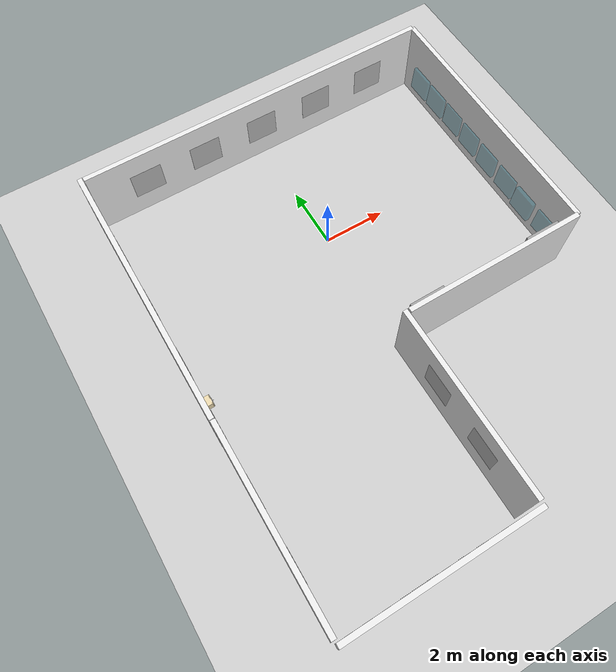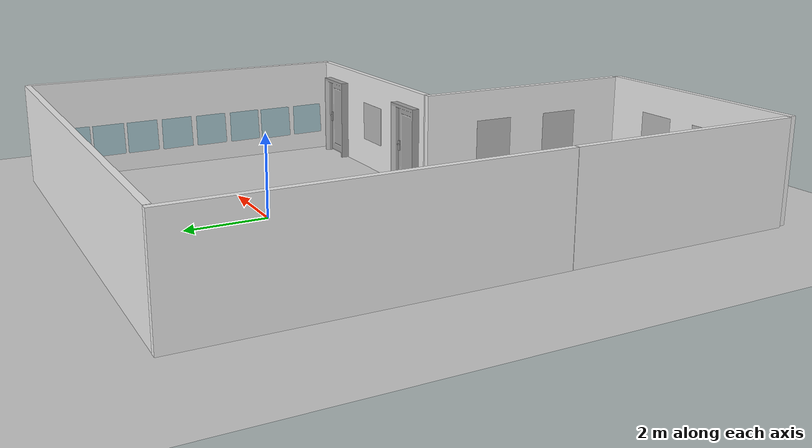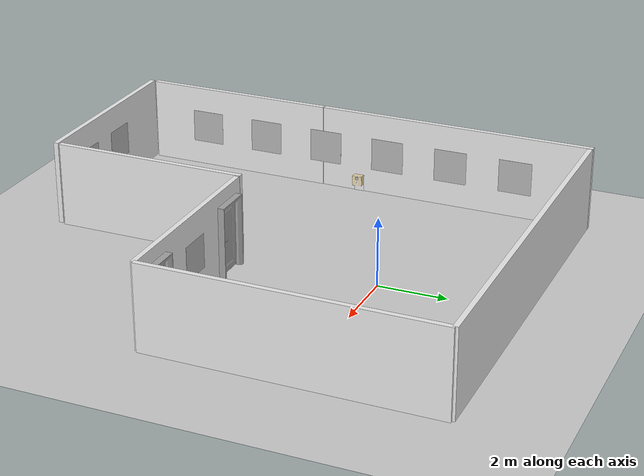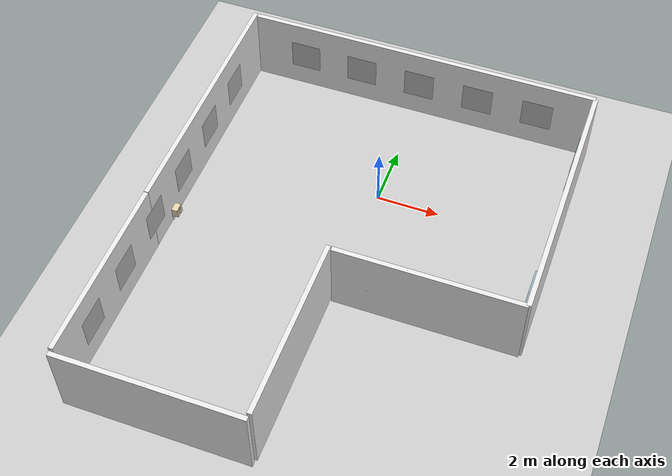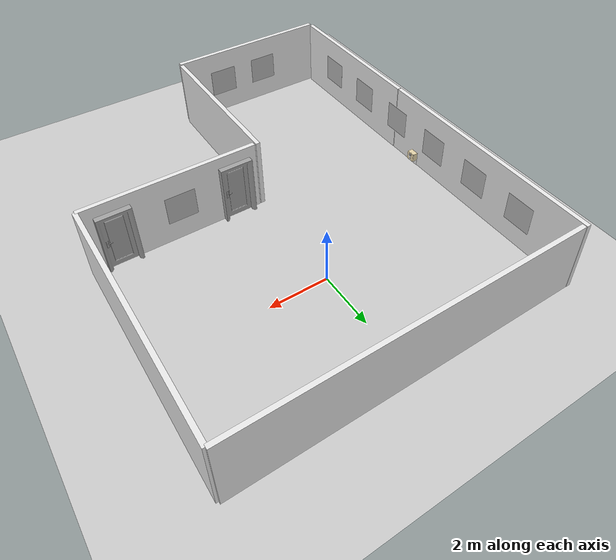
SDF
<sdf version="1.6">
 <world name="default">
  <light name="sun" type="directional">
   <pose>0 0 10 0 -0 0</pose>
   <diffuse>0.8 0.8 0.8 1</diffuse>
   <specular>0.2 0.2 0.2 1</specular>
   <attenuation>
    <range>1000</range>
    <constant>0.9</constant>
    <linear>0.01</linear>
    <quadratic>0.001</quadratic>
   </attenuation>
   <direction>-0.5 0.5 -1</direction>
  </light>
  <gravity>0 0 -9.8</gravity>
  <magnetic_field>6e-06 2.3e-05 -4.2e-05</magnetic_field>
  <atmosphere type="adiabatic"/>
  <physics name="default_physics" default="0" type="ode">
   <max_step_size>0.01</max_step_size>
   <real_time_factor>1</real_time_factor>
   <real_time_update_rate>100</real_time_update_rate>
   <ode>
    <solver>
     <type>quick</type>
     <iters>100</iters>
     <precon_iters>0</precon_iters>
     <sor>1</sor>
     <use_dynamic_moi_rescaling>0</use_dynamic_moi_rescaling>
    </solver>
    <constraints>
     <cfm>0</cfm>
     <erp>0.5</erp>
     <contact_max_correcting_vel>1000</contact_max_correcting_vel>
     <contact_surface_layer>0</contact_surface_layer>
    </constraints>
   </ode>
  </physics>
  <scene><ambient>0.4 0.4 0.4 1</ambient><background>0.7 0.7 0.7 1</background><shadows>0</shadows></scene>
  <spherical_coordinates>
   <surface_model>EARTH_WGS84</surface_model>
   <latitude_deg>0</latitude_deg>
   <longitude_deg>0</longitude_deg>
   <elevation>0</elevation>
   <heading_deg>0</heading_deg>
  </spherical_coordinates>
  <model name="office_env_w2">
   <pose>0 4.162 1.25 0 -0 0</pose>
   <link name="Wall_10">
    <visual name="Wall_10_Visual_0">
     <geometry><box><size>11.466 0.15 2.5</size></box></geometry>
     <material>
      <script>
       <uri>model://office_env_w/materials/scripts</uri>
       <uri>model://office_env_w/materials/textures</uri>
       <name>wall_white</name>
      </script>
     </material>
     <meta><layer>0</layer></meta>
    </visual>
    <collision name="Wall_10_Collision_0"><geometry><box><size>11.466 0.15 2.5</size></box></geometry></collision>
   </link>
   <static>1</static>
  </model>
  <model name="office_env_w">
   <pose>5.733 0 1.25 0 -0 1.57</pose>
   <link name="Wall_10">
    <visual name="Wall_10_Visual_0">
     <geometry><box><size>8.324 0.15 2.5</size></box></geometry>
     <material>
      <script>
       <uri>model://office_env_w/materials/scripts</uri>
       <uri>model://office_env_w/materials/textures</uri>
       <name>wall_white</name>
      </script>
     </material>
     <meta><layer>0</layer></meta>
    </visual>
    <collision name="Wall_10_Collision_0"><geometry><box><size>8.324 0.15 2.5</size></box></geometry></collision>
   </link>
   <static>1</static>
  </model>
  <model name="office_env_w3">
   <pose>2.8655 -4.162 1.25 0 -0 0</pose>
   <link name="Wall_10">
    <visual name="Wall_10_Visual_0">
     <geometry><box><size>5.733 0.15 2.5</size></box></geometry>
     <material>
      <script>
       <uri>model://office_env_w/materials/scripts</uri>
       <uri>model://office_env_w/materials/textures</uri>
       <name>wall_white</name>
      </script>
     </material>
     <meta><layer>0</layer></meta>
    </visual>
    <collision name="Wall_10_Collision_0"><geometry><box><size>5.733 0.15 2.5</size></box></geometry></collision>
   </link>
   <static>1</static>
  </model>
  <model name="office_env_w3_clone">
   <pose>-0.116895 -6.96099 1.25 0 -0 1.57</pose>
   <link name="Wall_10">
    <visual name="Wall_10_Visual_0">
     <geometry><box><size>5.733 0.15 2.5</size></box></geometry>
     <material>
      <script>
       <uri>model://office_env_w/materials/scripts</uri>
       <uri>model://office_env_w/materials/textures</uri>
       <name>wall_white</name>
      </script>
     </material>
     <meta><layer>0</layer></meta>
    </visual>
    <collision name="Wall_10_Collision_0"><geometry><box><size>5.733 0.15 2.5</size></box></geometry></collision>
   </link>
   <static>1</static>
  </model>
  <model name="office_env_w_clone">
   <pose>-5.82948 0.079903 1.25 0 -0 1.57</pose>
   <link name="Wall_10">
    <visual name="Wall_10_Visual_0">
     <geometry><box><size>8.324 0.15 2.5</size></box></geometry>
     <material>
      <script>
       <uri>model://office_env_w/materials/scripts</uri>
       <uri>model://office_env_w/materials/textures</uri>
       <name>wall_white</name>
      </script>
     </material>
     <meta><layer>0</layer></meta>
    </visual>
    <collision name="Wall_10_Collision_0"><geometry><box><size>8.324 0.15 2.5</size></box></geometry></collision>
   </link>
   <static>1</static>
  </model>
  <model name="office_env_w3_clone_clone">
   <pose>-5.82704 -6.96526 1.25 0 -0 1.57</pose>
   <link name="Wall_10">
    <visual name="Wall_10_Visual_0">
     <geometry><box><size>5.733 0.15 2.5</size></box></geometry>
     <material>
      <script>
       <uri>model://office_env_w/materials/scripts</uri>
       <uri>model://office_env_w/materials/textures</uri>
       <name>wall_white</name>
      </script>
     </material>
     <meta><layer>0</layer></meta>
    </visual>
    <collision name="Wall_10_Collision_0"><geometry><box><size>5.733 0.15 2.5</size></box></geometry></collision>
   </link>
   <static>1</static>
  </model>
  <model name="office_env_w3_clone_0">
   <pose>-2.96341 -9.9742 1.25 0 -0 0</pose>
   <link name="Wall_10">
    <visual name="Wall_10_Visual_0">
     <geometry><box><size>5.733 0.15 2.5</size></box></geometry>
     <material>
      <script>
       <uri>model://office_env_w/materials/scripts</uri>
       <uri>model://office_env_w/materials/textures</uri>
       <name>wall_white</name>
      </script>
     </material>
     <meta><layer>0</layer></meta>
    </visual>
    <collision name="Wall_10_Collision_0"><geometry><box><size>5.733 0.15 2.5</size></box></geometry></collision>
   </link>
   <static>1</static>
  </model>
  <model name="door_3d">
   <link name="link_1">
    <visual name="visual">
     <geometry><mesh><uri>model://door_3d/meshes/door_v2_door.dae</uri><scale>1 1 1</scale></mesh></geometry>
     <material>
      <script>
       <uri>model://door_3d/materials/scripts</uri>
       <uri>model://door_3d/materials/textures</uri>
       <name>door_3d</name>
      </script>
     </material>
    </visual>
    <collision name="collision">
     <geometry><mesh><uri>model://door_3d/meshes/door_v2_door.dae</uri><scale>1 1 1</scale></mesh></geometry>
    </collision>
   </link>
   <link name="link_2">
    <visual name="visual">
     <geometry><mesh><uri>model://door_3d/meshes/door_v2_handle.dae</uri><scale>1 1 1</scale></mesh></geometry>
     <material>
      <script>
       <uri>model://door_3d/materials/scripts</uri>
       <uri>model://door_3d/materials/textures</uri>
       <name>door_handle</name>
      </script>
     </material>
    </visual>
    <collision name="collision">
     <geometry><mesh><uri>model://door_3d/meshes/door_v2_handle.dae</uri><scale>1 1 1</scale></mesh></geometry>
    </collision>
   </link>
   <static>1</static>
   <pose>4.76404 -4.01537 0 0 -0 0</pose>
  </model>
  <model name="door_3d_0">
   <link name="link_1">
    <visual name="visual">
     <geometry><mesh><uri>model://door_3d/meshes/door_v2_door.dae</uri><scale>1 1 1</scale></mesh></geometry>
     <material>
      <script>
       <uri>model://door_3d/materials/scripts</uri>
       <uri>model://door_3d/materials/textures</uri>
       <name>door_3d</name>
      </script>
     </material>
    </visual>
    <collision name="collision">
     <geometry><mesh><uri>model://door_3d/meshes/door_v2_door.dae</uri><scale>1 1 1</scale></mesh></geometry>
    </collision>
   </link>
   <link name="link_2">
    <visual name="visual">
     <geometry><mesh><uri>model://door_3d/meshes/door_v2_handle.dae</uri><scale>1 1 1</scale></mesh></geometry>
     <material>
      <script>
       <uri>model://door_3d/materials/scripts</uri>
       <uri>model://door_3d/materials/textures</uri>
       <name>door_handle</name>
      </script>
     </material>
    </visual>
    <collision name="collision">
     <geometry><mesh><uri>model://door_3d/meshes/door_v2_handle.dae</uri><scale>1 1 1</scale></mesh></geometry>
    </collision>
   </link>
   <static>1</static>
   <pose>0.773011 -4.02457 0 0 -0 0</pose>
  </model>
  <model name="window_3">
   <link name="link_2">
    <visual name="visual">
     <pose>0 0 0.9 0 -0 0</pose>
     <geometry><box><size>0.8 0.15 0.8</size></box></geometry>
     <material>
      <lighting>1</lighting>
      <ambient>0.1 0.5 0.6 1</ambient>
      <diffuse>0.1 0.5 0.6 1</diffuse>
      <specular>0.01 0.01 0.01 1</specular>
      <emissive>0 0 0 1</emissive>
     </material>
     <transparency>0.7</transparency>
    </visual>
    <collision name="collision">
     <pose>0 0 0.9 0 -0 0</pose>
     <geometry><box><size>0.8 0.15 0.8</size></box></geometry>
    </collision>
   </link>
   <static>1</static>
   <pose>5.55041 3.13004 -0.000428 0.072676 0.011663 1.57159</pose>
  </model>
  <model name="window_3_clone_clone">
   <link name="link_2">
    <visual name="visual">
     <pose>0 0 0.9 0 -0 0</pose>
     <geometry><box><size>0.8 0.15 0.8</size></box></geometry>
     <material>
      <lighting>1</lighting>
      <ambient>0.1 0.5 0.6 1</ambient>
      <diffuse>0.1 0.5 0.6 1</diffuse>
      <specular>0.01 0.01 0.01 1</specular>
      <emissive>0 0 0 1</emissive>
     </material>
     <transparency>0.7</transparency>
    </visual>
    <collision name="collision">
     <pose>0 0 0.9 0 -0 0</pose>
     <geometry><box><size>0.8 0.15 0.8</size></box></geometry>
    </collision>
   </link>
   <static>1</static>
   <pose>5.57835 0.394375 -0.000428 0.072676 0.011663 1.57159</pose>
  </model>
  <model name="window_3_clone_clone_0">
   <link name="link_2">
    <visual name="visual">
     <pose>0 0 0.9 0 -0 0</pose>
     <geometry><box><size>0.8 0.15 0.8</size></box></geometry>
     <material>
      <lighting>1</lighting>
      <ambient>0.1 0.5 0.6 1</ambient>
      <diffuse>0.1 0.5 0.6 1</diffuse>
      <specular>0.01 0.01 0.01 1</specular>
      <emissive>0 0 0 1</emissive>
     </material>
     <transparency>0.7</transparency>
    </visual>
    <collision name="collision">
     <pose>0 0 0.9 0 -0 0</pose>
     <geometry><box><size>0.8 0.15 0.8</size></box></geometry>
    </collision>
   </link>
   <static>1</static>
   <pose>5.57507 -1.53947 -0.000428 0.072676 0.011663 1.57159</pose>
  </model>
  <model name="window_3_clone_clone_1">
   <link name="link_2">
    <visual name="visual">
     <pose>0 0 0.9 0 -0 0</pose>
     <geometry><box><size>0.8 0.15 0.8</size></box></geometry>
     <material>
      <lighting>1</lighting>
      <ambient>0.1 0.5 0.6 1</ambient>
      <diffuse>0.1 0.5 0.6 1</diffuse>
      <specular>0.01 0.01 0.01 1</specular>
      <emissive>0 0 0 1</emissive>
     </material>
     <transparency>0.7</transparency>
    </visual>
    <collision name="collision">
     <pose>0 0 0.9 0 -0 0</pose>
     <geometry><box><size>0.8 0.15 0.8</size></box></geometry>
    </collision>
   </link>
   <static>1</static>
   <pose>5.57316 -3.44378 -0.000428 0.072676 0.011663 1.57159</pose>
  </model>
  <model name="window_3_clone_clone_2">
   <link name="link_2">
    <visual name="visual">
     <pose>0 0 0.9 0 -0 0</pose>
     <geometry><box><size>0.8 0.15 0.8</size></box></geometry>
     <material>
      <lighting>1</lighting>
      <ambient>0.1 0.5 0.6 1</ambient>
      <diffuse>0.1 0.5 0.6 1</diffuse>
      <specular>0.01 0.01 0.01 1</specular>
      <emissive>0 0 0 1</emissive>
     </material>
     <transparency>0.7</transparency>
    </visual>
    <collision name="collision">
     <pose>0 0 0.9 0 -0 0</pose>
     <geometry><box><size>0.8 0.15 0.8</size></box></geometry>
    </collision>
   </link>
   <static>1</static>
   <pose>5.51026 -2.44936 -0.000428 0.072676 0.011663 1.57159</pose>
  </model>
  <model name="window_3_clone_clone_3">
   <link name="link_2">
    <visual name="visual">
     <pose>0 0 0.9 0 -0 0</pose>
     <geometry><box><size>0.8 0.15 0.8</size></box></geometry>
     <material>
      <lighting>1</lighting>
      <ambient>0.1 0.5 0.6 1</ambient>
      <diffuse>0.1 0.5 0.6 1</diffuse>
      <specular>0.01 0.01 0.01 1</specular>
      <emissive>0 0 0 1</emissive>
     </material>
     <transparency>0.7</transparency>
    </visual>
    <collision name="collision">
     <pose>0 0 0.9 0 -0 0</pose>
     <geometry><box><size>0.8 0.15 0.8</size></box></geometry>
    </collision>
   </link>
   <static>1</static>
   <pose>5.56777 -0.565762 -0.000428 0.072676 0.011663 1.57159</pose>
  </model>
  <model name="window_3_clone_clone_4">
   <link name="link_2">
    <visual name="visual">
     <pose>0 0 0.9 0 -0 0</pose>
     <geometry><box><size>0.8 0.15 0.8</size></box></geometry>
     <material>
      <lighting>1</lighting>
      <ambient>0.1 0.5 0.6 1</ambient>
      <diffuse>0.1 0.5 0.6 1</diffuse>
      <specular>0.01 0.01 0.01 1</specular>
      <emissive>0 0 0 1</emissive>
     </material>
     <transparency>0.7</transparency>
    </visual>
    <collision name="collision">
     <pose>0 0 0.9 0 -0 0</pose>
     <geometry><box><size>0.8 0.15 0.8</size></box></geometry>
    </collision>
   </link>
   <static>1</static>
   <pose>5.59135 1.3384 -0.000428 0.072676 0.011663 1.57159</pose>
  </model>
  <model name="window_3_clone_clone_5">
   <link name="link_2">
    <visual name="visual">
     <pose>0 0 0.9 0 -0 0</pose>
     <geometry><box><size>0.8 0.15 0.8</size></box></geometry>
     <material>
      <lighting>1</lighting>
      <ambient>0.1 0.5 0.6 1</ambient>
      <diffuse>0.1 0.5 0.6 1</diffuse>
      <specular>0.01 0.01 0.01 1</specular>
      <emissive>0 0 0 1</emissive>
     </material>
     <transparency>0.7</transparency>
    </visual>
    <collision name="collision">
     <pose>0 0 0.9 0 -0 0</pose>
     <geometry><box><size>0.8 0.15 0.8</size></box></geometry>
    </collision>
   </link>
   <static>1</static>
   <pose>5.56149 2.2418 -0.000428 0.072676 0.011663 1.57159</pose>
  </model>
  <model name="neobotix_wall_stickers">
   <static>1</static>
   <link name="link">
    <collision name="collision">
     <geometry><plane><normal>0 0 1</normal><size>1 1</size></plane></geometry>
     <surface><friction><ode><mu>100</mu><mu2>50</mu2></ode></friction></surface>
    </collision>
    <visual name="visual">
     <cast_shadows>0</cast_shadows>
     <geometry><plane><normal>0 0 1</normal><size>1 1</size></plane></geometry>
     <material>
      <script>
       <uri>model://neobotix_wall_stickers/materials/scripts</uri>
       <uri>model://neobotix_wall_stickers/materials/textures/</uri>
       <name>NeobotixGroundPlane/Image</name>
      </script>
     </material>
    </visual>
   </link>
   <pose>0 4.07 1.25 1.57 -0 0</pose>
  </model>
  <model name="neobotix_wall_stickers_0">
   <static>1</static>
   <link name="link">
    <collision name="collision">
     <geometry><plane><normal>0 0 1</normal><size>1 1</size></plane></geometry>
     <surface><friction><ode><mu>100</mu><mu2>50</mu2></ode></friction></surface>
    </collision>
    <visual name="visual">
     <cast_shadows>0</cast_shadows>
     <geometry><plane><normal>0 0 1</normal><size>1 1</size></plane></geometry>
     <material>
      <script>
       <uri>model://neobotix_wall_stickers/materials/scripts</uri>
       <uri>model://neobotix_wall_stickers/materials/textures/</uri>
       <name>NeobotixGroundPlane/Image</name>
      </script>
     </material>
    </visual>
   </link>
   <pose>-2 4.07 1.25 1.57 -0 0</pose>
  </model>
  <model name="neobotix_wall_stickers_1">
   <static>1</static>
   <link name="link">
    <collision name="collision">
     <geometry><plane><normal>0 0 1</normal><size>1 1</size></plane></geometry>
     <surface><friction><ode><mu>100</mu><mu2>50</mu2></ode></friction></surface>
    </collision>
    <visual name="visual">
     <cast_shadows>0</cast_shadows>
     <geometry><plane><normal>0 0 1</normal><size>1 1</size></plane></geometry>
     <material>
      <script>
       <uri>model://neobotix_wall_stickers/materials/scripts</uri>
       <uri>model://neobotix_wall_stickers/materials/textures/</uri>
       <name>NeobotixGroundPlane/Image</name>
      </script>
     </material>
    </visual>
   </link>
   <pose>-4 4.07 1.25 1.57 -0 0</pose>
  </model>
  <model name="neobotix_wall_stickers_2">
   <static>1</static>
   <link name="link">
    <collision name="collision">
     <geometry><plane><normal>0 0 1</normal><size>1 1</size></plane></geometry>
     <surface><friction><ode><mu>100</mu><mu2>50</mu2></ode></friction></surface>
    </collision>
    <visual name="visual">
     <cast_shadows>0</cast_shadows>
     <geometry><plane><normal>0 0 1</normal><size>1 1</size></plane></geometry>
     <material>
      <script>
       <uri>model://neobotix_wall_stickers/materials/scripts</uri>
       <uri>model://neobotix_wall_stickers/materials/textures/</uri>
       <name>NeobotixGroundPlane/Image</name>
      </script>
     </material>
    </visual>
   </link>
   <pose>2 4.07 1.25 1.57 -0 0</pose>
  </model>
  <model name="neobotix_wall_stickers_3">
   <static>1</static>
   <link name="link">
    <collision name="collision">
     <geometry><plane><normal>0 0 1</normal><size>1 1</size></plane></geometry>
     <surface><friction><ode><mu>100</mu><mu2>50</mu2></ode></friction></surface>
    </collision>
    <visual name="visual">
     <cast_shadows>0</cast_shadows>
     <geometry><plane><normal>0 0 1</normal><size>1 1</size></plane></geometry>
     <material>
      <script>
       <uri>model://neobotix_wall_stickers/materials/scripts</uri>
       <uri>model://neobotix_wall_stickers/materials/textures/</uri>
       <name>NeobotixGroundPlane/Image</name>
      </script>
     </material>
    </visual>
   </link>
   <pose>4 4.07 1.25 1.57 -0 0</pose>
  </model>
  <model name="neobotix_wall_stickers_4">
   <static>1</static>
   <link name="link">
    <collision name="collision">
     <geometry><plane><normal>0 0 1</normal><size>1 1</size></plane></geometry>
     <surface><friction><ode><mu>100</mu><mu2>50</mu2></ode></friction></surface>
    </collision>
    <visual name="visual">
     <cast_shadows>0</cast_shadows>
     <geometry><plane><normal>0 0 1</normal><size>1 1</size></plane></geometry>
     <material>
      <script>
       <uri>model://neobotix_wall_stickers/materials/scripts</uri>
       <uri>model://neobotix_wall_stickers/materials/textures/</uri>
       <name>NeobotixGroundPlane/Image</name>
      </script>
     </material>
    </visual>
   </link>
   <pose>2.7 -4.07 1.25 1.57159 0.001593 3.14159</pose>
  </model>
  <model name="neobotix_wall_stickers_5">
   <static>1</static>
   <link name="link">
    <collision name="collision">
     <geometry><plane><normal>0 0 1</normal><size>1 1</size></plane></geometry>
     <surface><friction><ode><mu>100</mu><mu2>50</mu2></ode></friction></surface>
    </collision>
    <visual name="visual">
     <cast_shadows>0</cast_shadows>
     <geometry><plane><normal>0 0 1</normal><size>1 1</size></plane></geometry>
     <material>
      <script>
       <uri>model://neobotix_wall_stickers/materials/scripts</uri>
       <uri>model://neobotix_wall_stickers/materials/textures/</uri>
       <name>NeobotixGroundPlane/Image</name>
      </script>
     </material>
    </visual>
   </link>
   <pose>-5.732 0 1.25 1.57 -0 1.57</pose>
  </model>
  <model name="neobotix_wall_stickers_6">
   <static>1</static>
   <link name="link">
    <collision name="collision">
     <geometry><plane><normal>0 0 1</normal><size>1 1</size></plane></geometry>
     <surface><friction><ode><mu>100</mu><mu2>50</mu2></ode></friction></surface>
    </collision>
    <visual name="visual">
     <cast_shadows>0</cast_shadows>
     <geometry><plane><normal>0 0 1</normal><size>1 1</size></plane></geometry>
     <material>
      <script>
       <uri>model://neobotix_wall_stickers/materials/scripts</uri>
       <uri>model://neobotix_wall_stickers/materials/textures/</uri>
       <name>NeobotixGroundPlane/Image</name>
      </script>
     </material>
    </visual>
   </link>
   <pose>-5.732 -2 1.25 1.57 -0 1.57</pose>
  </model>
  <model name="neobotix_wall_stickers_7">
   <static>1</static>
   <link name="link">
    <collision name="collision">
     <geometry><plane><normal>0 0 1</normal><size>1 1</size></plane></geometry>
     <surface><friction><ode><mu>100</mu><mu2>50</mu2></ode></friction></surface>
    </collision>
    <visual name="visual">
     <cast_shadows>0</cast_shadows>
     <geometry><plane><normal>0 0 1</normal><size>1 1</size></plane></geometry>
     <material>
      <script>
       <uri>model://neobotix_wall_stickers/materials/scripts</uri>
       <uri>model://neobotix_wall_stickers/materials/textures/</uri>
       <name>NeobotixGroundPlane/Image</name>
      </script>
     </material>
    </visual>
   </link>
   <pose>-5.732 2 1.25 1.57 -0 1.57</pose>
  </model>
  <model name="neobotix_wall_stickers_8">
   <static>1</static>
   <link name="link">
    <collision name="collision">
     <geometry><plane><normal>0 0 1</normal><size>1 1</size></plane></geometry>
     <surface><friction><ode><mu>100</mu><mu2>50</mu2></ode></friction></surface>
    </collision>
    <visual name="visual">
     <cast_shadows>0</cast_shadows>
     <geometry><plane><normal>0 0 1</normal><size>1 1</size></plane></geometry>
     <material>
      <script>
       <uri>model://neobotix_wall_stickers/materials/scripts</uri>
       <uri>model://neobotix_wall_stickers/materials/textures/</uri>
       <name>NeobotixGroundPlane/Image</name>
      </script>
     </material>
    </visual>
   </link>
   <pose>-5.732 -4 1.25 1.57 -0 1.57</pose>
  </model>
  <model name="neobotix_wall_stickers_9">
   <static>1</static>
   <link name="link">
    <collision name="collision">
     <geometry><plane><normal>0 0 1</normal><size>1 1</size></plane></geometry>
     <surface><friction><ode><mu>100</mu><mu2>50</mu2></ode></friction></surface>
    </collision>
    <visual name="visual">
     <cast_shadows>0</cast_shadows>
     <geometry><plane><normal>0 0 1</normal><size>1 1</size></plane></geometry>
     <material>
      <script>
       <uri>model://neobotix_wall_stickers/materials/scripts</uri>
       <uri>model://neobotix_wall_stickers/materials/textures/</uri>
       <name>NeobotixGroundPlane/Image</name>
      </script>
     </material>
    </visual>
   </link>
   <pose>-5.732 -6 1.25 1.57 -0 1.57</pose>
  </model>
  <model name="neobotix_wall_stickers_10">
   <static>1</static>
   <link name="link">
    <collision name="collision">
     <geometry><plane><normal>0 0 1</normal><size>1 1</size></plane></geometry>
     <surface><friction><ode><mu>100</mu><mu2>50</mu2></ode></friction></surface>
    </collision>
    <visual name="visual">
     <cast_shadows>0</cast_shadows>
     <geometry><plane><normal>0 0 1</normal><size>1 1</size></plane></geometry>
     <material>
      <script>
       <uri>model://neobotix_wall_stickers/materials/scripts</uri>
       <uri>model://neobotix_wall_stickers/materials/textures/</uri>
       <name>NeobotixGroundPlane/Image</name>
      </script>
     </material>
    </visual>
   </link>
   <pose>-5.732 -8 1.25 1.57 -0 1.57</pose>
  </model>
  <model name="neobotix_wall_stickers_11">
   <static>1</static>
   <link name="link">
    <collision name="collision">
     <geometry><plane><normal>0 0 1</normal><size>1 1</size></plane></geometry>
     <surface><friction><ode><mu>100</mu><mu2>50</mu2></ode></friction></surface>
    </collision>
    <visual name="visual">
     <cast_shadows>0</cast_shadows>
     <geometry><plane><normal>0 0 1</normal><size>1 1</size></plane></geometry>
     <material>
      <script>
       <uri>model://neobotix_wall_stickers/materials/scripts</uri>
       <uri>model://neobotix_wall_stickers/materials/textures/</uri>
       <name>NeobotixGroundPlane/Image</name>
      </script>
     </material>
    </visual>
   </link>
   <pose>-0.2 -8 1.25 1.57159 0.001593 -1.57159</pose>
  </model>
  <model name="neobotix_wall_stickers_12">
   <static>1</static>
   <link name="link">
    <collision name="collision">
     <geometry><plane><normal>0 0 1</normal><size>1 1</size></plane></geometry>
     <surface><friction><ode><mu>100</mu><mu2>50</mu2></ode></friction></surface>
    </collision>
    <visual name="visual">
     <cast_shadows>0</cast_shadows>
     <geometry><plane><normal>0 0 1</normal><size>1 1</size></plane></geometry>
     <material>
      <script>
       <uri>model://neobotix_wall_stickers/materials/scripts</uri>
       <uri>model://neobotix_wall_stickers/materials/textures/</uri>
       <name>NeobotixGroundPlane/Image</name>
      </script>
     </material>
    </visual>
   </link>
   <pose>-0.2 -6 1.25 1.57159 0.001593 -1.57159</pose>
  </model>
  <model name="neobotix_wall_stickers_13">
   <static>1</static>
   <link name="link">
    <collision name="collision">
     <geometry><plane><normal>0 0 1</normal><size>1 1</size></plane></geometry>
     <surface><friction><ode><mu>100</mu><mu2>50</mu2></ode></friction></surface>
    </collision>
    <visual name="visual">
     <cast_shadows>0</cast_shadows>
     <geometry><plane><normal>0 0 1</normal><size>1 1</size></plane></geometry>
     <material>
      <script>
       <uri>model://neobotix_wall_stickers/materials/scripts</uri>
       <uri>model://neobotix_wall_stickers/materials/textures/</uri>
       <name>NeobotixGroundPlane/Image</name>
      </script>
     </material>
    </visual>
   </link>
   <pose>-1.7445 -9.89 1.25 1.57159 0.001593 3.14159</pose>
  </model>
  <model name="neobotix_wall_stickers_14">
   <static>1</static>
   <link name="link">
    <collision name="collision">
     <geometry><plane><normal>0 0 1</normal><size>1 1</size></plane></geometry>
     <surface><friction><ode><mu>100</mu><mu2>50</mu2></ode></friction></surface>
    </collision>
    <visual name="visual">
     <cast_shadows>0</cast_shadows>
     <geometry><plane><normal>0 0 1</normal><size>1 1</size></plane></geometry>
     <material>
      <script>
       <uri>model://neobotix_wall_stickers/materials/scripts</uri>
       <uri>model://neobotix_wall_stickers/materials/textures/</uri>
       <name>NeobotixGroundPlane/Image</name>
      </script>
     </material>
    </visual>
   </link>
   <pose>-3.489 -9.89 1.25 1.57 -0 -3.14</pose>
  </model>
  <light name="user_point_light_0" type="point">
   <pose>3.54976 1.43038 1 0 -0 0</pose>
   <diffuse>0.5 0.5 0.5 1</diffuse>
   <specular>0.1 0.1 0.1 1</specular>
   <attenuation>
    <range>20</range>
    <constant>0.5</constant>
    <linear>0.01</linear>
    <quadratic>0.001</quadratic>
   </attenuation>
   <cast_shadows>0</cast_shadows>
   <direction>0 0 -1</direction>
  </light>
  <light name="user_point_light_0_clone" type="point">
   <pose>-8.02842 6.22549 7.18798 0 -0 0</pose>
   <diffuse>0.5 0.5 0.5 1</diffuse>
   <specular>0.1 0.1 0.1 1</specular>
   <direction>0 0 -1</direction>
   <attenuation>
    <range>20</range>
    <constant>0.5</constant>
    <linear>0.01</linear>
    <quadratic>0.001</quadratic>
   </attenuation>
   <cast_shadows>0</cast_shadows>
  </light>
  <audio><device>default</device></audio>
  <model name="neobotix_ground_plane">
   <static>1</static>
   <link name="link">
    <collision name="collision">
     <geometry><plane><normal>0 0 1</normal><size>100 100</size></plane></geometry>
     <surface><friction><ode><mu>100</mu><mu2>50</mu2></ode></friction></surface>
    </collision>
    <visual name="visual">
     <cast_shadows>0</cast_shadows>
     <geometry><plane><normal>0 0 1</normal><size>100 100</size></plane></geometry>
     <material>
      <script>
       <uri>model://neobotix_ground_plane/materials/scripts</uri>
       <uri>model://neobotix_ground_plane/materials/textures/</uri>
       <name>NeobotixGroundPlane/Image</name>
      </script>
     </material>
    </visual>
   </link>
   <pose>15.6163 -0.783534 0 0 -0 0</pose>
  </model>
  <model name="Ar_tags">
   <link name="link_1">
    <visual name="visual">
     <geometry><mesh><uri>model://Ar_tags/meshes/Ar_tag.dae</uri><scale>1 1 1</scale></mesh></geometry>
     <material>
      <script>
       <uri>model://Ar_tags/materials/scripts</uri>
       <uri>model://Ar_tags/materials/textures</uri>
       <name>Ar_tags</name>
      </script>
     </material>
    </visual>
    <collision name="collision">
     <geometry><mesh><uri>model://Ar_tags/meshes/Ar_tag.dae</uri><scale>1 1 1</scale></mesh></geometry>
    </collision>
   </link>
   <static>1</static>
   <pose>-5.5463 -2.89682 0.451768 -1.57939 0.005995 -1.6128</pose>
  </model>
  <model name="dockin_station">
   <link name="link_1">
    <visual name="visual">
     <geometry><mesh><uri>model://docking_station/meshes/d1_back1.dae</uri><scale>1 1 1</scale></mesh></geometry>
    </visual>
    <collision name="collision">
     <geometry><mesh><uri>model://docking_station/meshes/d1_back1.dae</uri><scale>1 0 0</scale></mesh></geometry>
    </collision>
    <inertial>
     <inertia><ixx>1</ixx><ixy>0</ixy><ixz>0</ixz><iyy>1</iyy><iyz>0</iyz><izz>1</izz></inertia>
     <mass>1</mass>
    </inertial>
   </link>
   <pose>-5.74439 -2.89893 0 0 -0.045266 0</pose>
  </model>
 </world>
</sdf>
